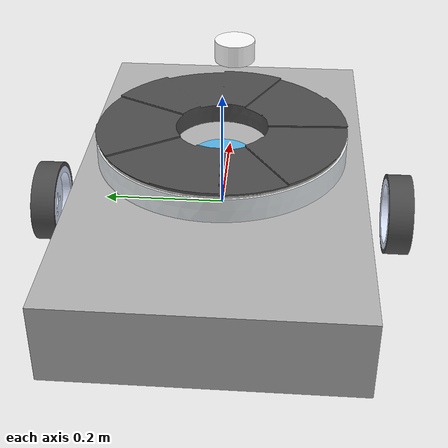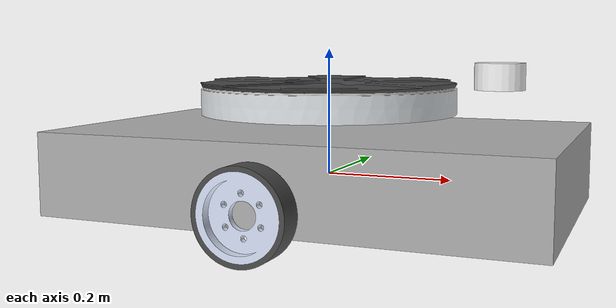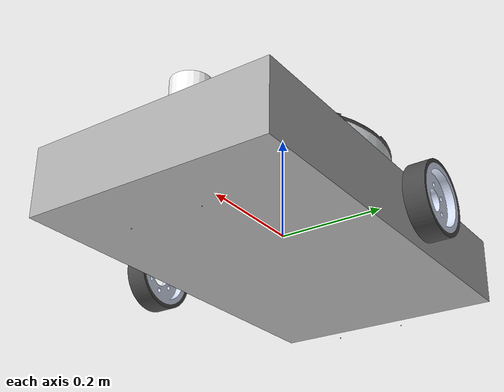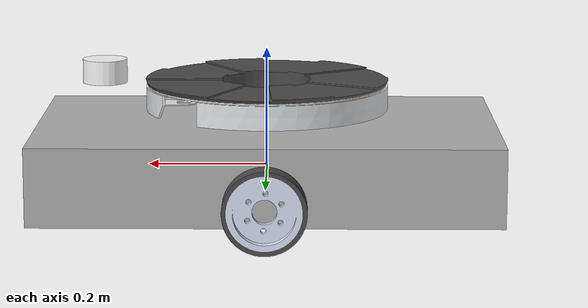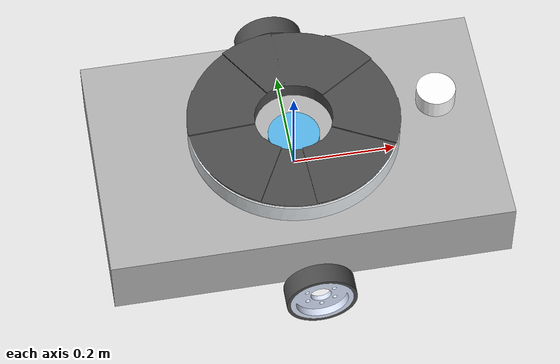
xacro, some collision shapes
<?xml version="1.0" ?>
<robot name="l1br" xmlns:xacro="http://ros.org/wiki/xacro">

  <!--=========================== CONTROL ===========================-->
  <xacro:include filename="l1br_control.xacro" />
  <xacro:include filename="sensors/imu_sensor.urdf.xacro" />
  <xacro:include filename="sensors/laser_sensor.urdf.xacro" />

  <!-- =========================== ROBOT ===========================  -->
  <xacro:include filename="robot_parts/traction_wheel.xacro" />
  <xacro:include filename="robot_parts/caster_wheel.xacro" />
  <xacro:include filename="robot_parts/robot_base.xacro" />
  <xacro:include filename="robot_parts/tray.xacro" />
  <xacro:tray/>
  <xacro:include filename="robot_parts/piston.xacro" />
  <xacro:piston/>

  <xacro:imu_sensor/>

  <xacro:laser_sensor
    update_rate="5"
    ray_count="360"
    min_angle="0"
    max_angle="6.28"
    min_range="0.12"
    max_range="8.0"
    topic_name="scan"
    pos_x="0.27"
    pos_y="0"
    pos_z="0.188"
  />

</robot>

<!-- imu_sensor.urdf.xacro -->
<robot xmlns:xacro="http://ros.org/wiki/xacro">
    <xacro:macro name="imu_sensor">
        <link name="imu_link"/>
        <joint name="imu_to_body" type="fixed">
            <parent link="base_link"/>
            <child link="imu_link"/>
            <origin xyz="0 0 0" rpy="0 0 0"/>
        </joint>

       <gazebo reference="imu_link">
        <gravity>true</gravity>
            <sensor name="imu_sensor" type="imu">
                <always_on>true</always_on>
                <update_rate>20</update_rate>
                <visualize>true</visualize>
                <imu>
                <angular_velocity>
                    <x>
                    <noise type="gaussian">
                        <mean>0.0</mean>
                        <stddev>2e-4</stddev>
                        <bias_mean>0.0000075</bias_mean>
                        <bias_stddev>0.0000008</bias_stddev>
                    </noise>
                    </x>
                    <y>
                    <noise type="gaussian">
                        <mean>0.0</mean>
                        <stddev>2e-4</stddev>
                        <bias_mean>0.0000075</bias_mean>
                        <bias_stddev>0.0000008</bias_stddev>
                    </noise>
                    </y>
                    <z>
                    <noise type="gaussian">
                        <mean>0.0</mean>
                        <stddev>2e-4</stddev>
                        <bias_mean>0.0000075</bias_mean>
                        <bias_stddev>0.0000008</bias_stddev>
                    </noise>
                    </z>
                </angular_velocity>
                <linear_acceleration>
                    <x>
                    <noise type="gaussian">
                        <mean>0.0</mean>
                        <stddev>1.7e-2</stddev>
                        <bias_mean>0.1</bias_mean>
                        <bias_stddev>0.001</bias_stddev>
                    </noise>
                    </x>
                    <y>
                    <noise type="gaussian">
                        <mean>0.0</mean>
                        <stddev>1.7e-2</stddev>
                        <bias_mean>0.1</bias_mean>
                        <bias_stddev>0.001</bias_stddev>
                    </noise>
                    </y>
                    <z>
                    <noise type="gaussian">
                        <mean>0.0</mean>
                        <stddev>1.7e-2</stddev>
                        <bias_mean>0.1</bias_mean>
                        <bias_stddev>0.001</bias_stddev>
                    </noise>
                    </z>
                </linear_acceleration>
                </imu>
                <plugin filename="libgazebo_ros_imu_sensor.so" name="imu_plugin">
                    <ros>
                        <remapping>~/out:=imu/data</remapping>
                    </ros>
                    <bodyName>imu_link</bodyName>
                    <frameName>imu_link</frameName>
                    <topicName>imu/data</topicName>
                    <updateRateHZ>10.0</updateRateHZ>
                    <gaussianNoise>0.0</gaussianNoise>
                    <xyzOffset>0 0 0</xyzOffset>
                    <rpyOffset>0 0 0</rpyOffset>
                    <initial_orientation_as_reference>false</initial_orientation_as_reference>
                </plugin>
                <pose>0 0 0 0 0 0</pose>
            </sensor>
        </gazebo>
    </xacro:macro>
</robot>

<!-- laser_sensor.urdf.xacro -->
<robot xmlns:xacro="http://ros.org/wiki/xacro">
    <xacro:property name="M_PI" value="3.14159265358979323846264338327950288419716939937510" />
    <xacro:macro name="laser_sensor" params="update_rate ray_count min_angle max_angle min_range max_range topic_name pos_x pos_y pos_z">
        <link name="lidar_link">
            <visual>
                <origin xyz="0 0 -0.025" rpy="0 0 ${M_PI/2}"/>
                <geometry>
                    <mesh filename="file:///$(find l1br)/meshes/rplidar.dae"/>
                </geometry>
                <material name="white">
                    <color rgba="1 1 1 1"/>
                </material>
            </visual>
            <collision>
                <origin xyz="0.003 -0.003 -0.027" rpy="0 0 ${M_PI/2}"/>
                <geometry>
                    <cylinder radius="0.0375" length="0.04"/>
                </geometry>
            </collision>
            <inertial>
                <origin xyz="0 0 0" rpy="0 0 0"/>
                <mass value="0.1"/>
                <inertia ixx="${(2/5) * 0.1 * (0.0375 * 0.0375)}" ixy="0" ixz="0"
                        iyy="${(2/5) * 0.1 * (0.0375 * 0.0375)}" iyz="0"
                        izz="${(2/5) * 0.1 * (0.0375 * 0.0375)}" />
            </inertial>
        </link>

        <joint name="lidar_link_to_base_link" type="fixed">
            <parent link="base_link"/>
            <child link="lidar_link"/>
            <origin xyz="${pos_x} ${pos_y} ${pos_z}" rpy="0 0 0"/>
        </joint>

        <gazebo reference="lidar_link">
            <visual>
                <material>
                    <ambient>0.003 0.639 0.223 1.0</ambient>
                    <diffuse>0.003 0.639 0.223 1.0</diffuse>
                    <specular>0.003 0.639 0.223 1.0</specular>
                    <emissive>0.0 0.0 0.0 0.0</emissive>
                </material>
            </visual>
        </gazebo>

        <gazebo reference="lidar_link">
            <sensor type="ray" name="lidar_link_head_hokuyo_sensor">
                <always_on>true</always_on>
                <update_rate>${update_rate}</update_rate>
                <pose>0 0 0 0 0 0</pose>
                <visualize>false</visualize>
                <ray>
                    <scan>
                        <horizontal>
                            <samples>${ray_count}</samples>
                            <resolution>1</resolution>
                            <min_angle>${min_angle}</min_angle>
                            <max_angle>${max_angle}</max_angle>
                        </horizontal>
                    </scan>
                    <range>
                        <min>${min_range}</min>
                        <max>${max_range}</max>
                        <resolution>0.01</resolution>
                    </range>
                    <noise>
                        <type>gaussian</type>
                        <mean>0.0</mean>
                        <stddev>0.01</stddev>
                    </noise>
                </ray>
                <plugin name="lidar_link_gazebo_ros_head_hokuyo_controller" filename="libgazebo_ros_ray_sensor.so">
                    <ros>
                        <remapping>~/out:=${topic_name}</remapping>
                    </ros>
                    <output_type>sensor_msgs/LaserScan</output_type>
                    <topicName>${topic_name}</topicName>
                    <frame_name>lidar_link</frame_name>
                </plugin>
            </sensor>
        </gazebo>
  </xacro:macro>
</robot>

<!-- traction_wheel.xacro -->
<robot xmlns:xacro="http://www.ros.org/wiki/xacro">

    <!-- Define the shape of the robot's two wheels in meters -->
    <xacro:property name="wheel_radius" value="0.0675"/>
    <xacro:property name="wheel_width" value="0.04"/>
    <xacro:property name="wheel_mass" value="1"/>

    <xacro:macro name="traction_wheel" params="prefix pos_X pos_Y pos_Z pos_r pos_p pos_y">
        <joint name="joint_${prefix}" type="continuous">
            <parent link="base_link" />
            <child link="${prefix}" />
            <origin rpy="${pos_r} ${pos_p} ${pos_y}" xyz="${pos_X} ${pos_Y} ${pos_Z}" />
            <axis xyz="1 0 0" />
        </joint>

        <gazebo reference="${prefix}">
            <selfCollide>false</selfCollide>
            <mu1>1.5</mu1>
            <mu2>1.5</mu2>
            <kp>1000000.0</kp>
            <kd>100.0</kd>
        </gazebo>

        <link name="${prefix}">
            <inertial>
                <mass value="${wheel_mass}" />
                <origin rpy="0 1.57 0" xyz="0 0 0" />
                <inertia ixx="${(2/5) * wheel_mass * (wheel_radius * wheel_radius)}" ixy="0" ixz="0"
                         iyy="${(2/5) * wheel_mass * (wheel_radius * wheel_radius)}" iyz="0"
                         izz="${(2/5) * wheel_mass * (wheel_radius * wheel_radius)}" />
            </inertial>
            <collision name="${prefix}_collision">
                <origin rpy="0 1.57 0" xyz="0 0 0" />
                <geometry>
                    <cylinder length="${wheel_width}" radius="${wheel_radius}"/>
                </geometry>
            </collision>
            <visual name="${prefix}_visual">
                <origin rpy="0 0 0" xyz="0 0 0" />
                <geometry>
                    <mesh filename="file:///$(find l1br)/meshes/M_rodatrativa.dae" scale="1 1 1" />
                </geometry>
            </visual>
        </link>
    </xacro:macro>

    <xacro:traction_wheel prefix="left_wheel" pos_X="0" pos_Y="0.296395" pos_Z="-0.0118" pos_r="0" pos_p="0" pos_y="1.57" />
    <xacro:traction_wheel prefix="right_wheel" pos_X="0" pos_Y="-0.296395" pos_Z="-0.0118" pos_r="0" pos_p="0" pos_y="1.57" />
</robot>

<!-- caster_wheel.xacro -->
<robot xmlns:xacro="http://www.ros.org/wiki/xacro">

    <!-- Define the shape of the robot's four caster wheels in meters -->
    <xacro:property name="caster_wheel_radius" value="0.01"/>
    <xacro:property name="caster_wheel_radius_visual" value="0.001"/>
    <xacro:property name="caster_wheel_mass" value="0.005"/>

    <xacro:macro name="caster_wheel" params="prefix pos_X pos_Y pos_Z pos_r pos_p pos_y">
        <joint name="joint_${prefix}" type="continuous">
            <parent link="base_link" />
            <child link="${prefix}" />
            <origin rpy="${pos_r} ${pos_p} ${pos_y}" xyz="${pos_X} ${pos_Y} ${pos_Z}" />
            <axis xyz="1 0 0" />
        </joint>

        <gazebo reference="${prefix}">
            <selfCollide>false</selfCollide>
            <mu1>0.2</mu1>
            <mu2>0.2</mu2>
            <kp>10000000.0</kp>
            <kd>10000.0</kd>
        </gazebo>

        <link name="${prefix}">
            <inertial>
                <mass value="${caster_wheel_mass}" />
                <origin rpy="0 0 0" xyz="0 0 0" />
                <inertia ixx="${(2/5) * caster_wheel_mass * (caster_wheel_radius * caster_wheel_radius)}" ixy="0" ixz="0"
                         iyy="${(2/5) * caster_wheel_mass * (caster_wheel_radius * caster_wheel_radius)}" iyz="0"
                         izz="${(2/5) * caster_wheel_mass * (caster_wheel_radius * caster_wheel_radius)}" />
            </inertial>

            <collision name="${prefix}_collision">
                <origin rpy="0 0 0" xyz="0 0 0" />
                <geometry>
                    <sphere radius="0.01"/>
                </geometry>
            </collision>

            <visual name="${prefix}_visual">
                <origin rpy="0 0 0" xyz="0 0 0" />
                <geometry>
                    <sphere radius="${caster_wheel_radius_visual}"/>
                </geometry>
            </visual>
        </link>
    </xacro:macro>

    <xacro:caster_wheel prefix="back_left_caster_wheel" pos_X="0.32" pos_Y="0.07" pos_Z="-0.092" pos_r="-1.57" pos_p="0" pos_y="0" />
    <xacro:caster_wheel prefix="back_right_caster_wheel" pos_X="0.32" pos_Y="-0.07" pos_Z="-0.092" pos_r="-1.57" pos_p="0" pos_y="0" />
    <xacro:caster_wheel prefix="front_left_caster_wheel" pos_X="-0.32" pos_Y="0.07" pos_Z="-0.092" pos_r="-1.57" pos_p="0" pos_y="0" />
    <xacro:caster_wheel prefix="front_right_caster_wheel" pos_X="-0.32" pos_Y="-0.07" pos_Z="-0.092" pos_r="-1.57" pos_p="0" pos_y="0" />
</robot>

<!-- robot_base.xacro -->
<robot xmlns:xacro="http://www.ros.org/wiki/xacro">

    <!-- Define the size of the robot's main base_link in meters -->
    <xacro:property name="base_width" value="0.47"/>
    <xacro:property name="base_length" value="0.77"/>
    <xacro:property name="base_height" value="0.13"/>
    <xacro:property name="base_mass" value="2.4"/>

    <xacro:macro name="base" params="base_link">
        <link name="base_footprint">
        </link>

        <gazebo reference="base_link">
        <mu1 value="0.3" />
        <mu2 value="0.3" />
        <kp value="1000000.0" />
        <kd value="100" />
        <fdir1 value="0 0 0" />
        </gazebo>

        <joint name="base_joint" type="fixed">
        <parent link="base_link"/>
        <child link="base_footprint" />
        <origin xyz="0.0 0.0 -0.0793" rpy="0 0 3.14"/>
        </joint>

        <link name="base_link">
        <visual>
            <origin xyz="0  0  0" rpy="0 0 0"/>
            <geometry>
            <mesh filename="file:///$(find l1br)/meshes/EST_estrutura_m3.dae" />
            </geometry>
        </visual>

        <collision>
            <origin rpy="0  0  0" xyz="0  0  0.01" />
            <geometry>
                <box size="${base_length} ${base_width} ${base_height}"/>
            </geometry>
        </collision>

        <inertial>
            <origin xyz="0  0  0.0" rpy="0 0 1.57"/>
            <mass value="${base_mass}"/>
            <inertia ixx="0.12196" ixy="0.0" ixz="0.0"
                    iyy="0.04756" iyz="0.0"
                    izz="0.16276" />
        </inertial>

        </link>
    </xacro:macro>

    <xacro:base base_link="robot_base" />

</robot>

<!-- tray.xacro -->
<robot xmlns:xacro="http://www.ros.org/wiki/xacro">

    <!-- Define the shape of the robot's tray in meters -->
    <xacro:property name="tray_radius" value="0.2"/>
    <xacro:property name="tray_width" value="0.041"/>

    <xacro:macro name="tray">
        <link name="tray">
        <visual name="tray_visual">
            <origin xyz="0 0 0.0118" rpy="0 0 0"/>
            <geometry>
                <mesh filename="file:///$(find l1br)/meshes/ELV_conjuntocompleto.dae" scale="1 1 1"/>
            </geometry>
        </visual>

        <collision name="tray_collision">
            <origin xyz="0 -0.015047 0.1" rpy="0 0 0"/>
            <geometry>
            <cylinder length="${tray_width}" radius="${tray_radius}"/>
            </geometry>
        </collision>

        <inertial>
            <mass value="0.5" />
            <origin rpy="0 0 0" xyz="0 0 0" />
            <inertia ixx="${(2/5) * 0.5 * (tray_radius * tray_radius)}" ixy="0.0" ixz="0.0"
                    iyy="${(2/5) * 0.5 * (tray_radius * tray_radius)}" iyz="0.0"
                    izz="${(2/5) * 0.5 * (tray_radius * tray_radius)}" />
        </inertial>
        </link>

        <joint name="joint_tray" type="continuous">
                <parent link="piston" />
                <child link="tray" />
                <origin rpy="0 0 0" xyz="0 0 -0.06" />
                <axis xyz="0 0 1"/>
        </joint>
    </xacro:macro>
</robot>

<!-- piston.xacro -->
<robot xmlns:xacro="http://www.ros.org/wiki/xacro">

    <xacro:property name="piston_width" value="0.01"/>
    <xacro:property name="piston_radius" value="0.05"/>
    <xacro:property name="piston_mass" value="0.2"/>

    <xacro:macro name="piston">
        <gazebo reference="piston">
            <selfCollide>false</selfCollide>
            <mu1>0.09</mu1>
            <mu2>0.09</mu2>
            <kp>10000000.0</kp>
            <kd>10000.0</kd>
        </gazebo>

        <link name="piston">
            <visual name="piston_visual">
                <origin xyz="0 0 0" rpy="0 0 0"/>
                <geometry>
                    <cylinder length="${piston_width}" radius="${piston_radius}"/>
                </geometry>
            </visual>

            <collision name="piston_collision">
                <origin xyz="0 0 0" rpy="0 0 0"/>
                <geometry>
                    <cylinder length="${piston_width}" radius="${piston_radius}"/>
                </geometry>
            </collision>

            <inertial>
                <mass value="${piston_mass}" />
                <origin rpy="0 0 0" xyz="0 0 0" />
                <inertia ixx="${(2/5) * piston_mass * (piston_radius * piston_radius)}" ixy="0.0" ixz="0.0"
                        iyy="${(2/5) * piston_mass * (piston_radius * piston_radius)}" iyz="0.0"
                        izz="${(2/5) * piston_mass * (piston_radius * piston_radius)}" />
            </inertial>
        </link>

        <joint name="joint_piston" type="prismatic">
                <parent link="base_link" />
                <child link="piston" />
                <origin rpy="0 0 0" xyz="0 0 0.09" />
                <axis xyz="0 0 1"/>
                <limit effort="1000.0" lower="0" upper="0.3" velocity="0.5"/>
        </joint>
    </xacro:macro>
</robot>
